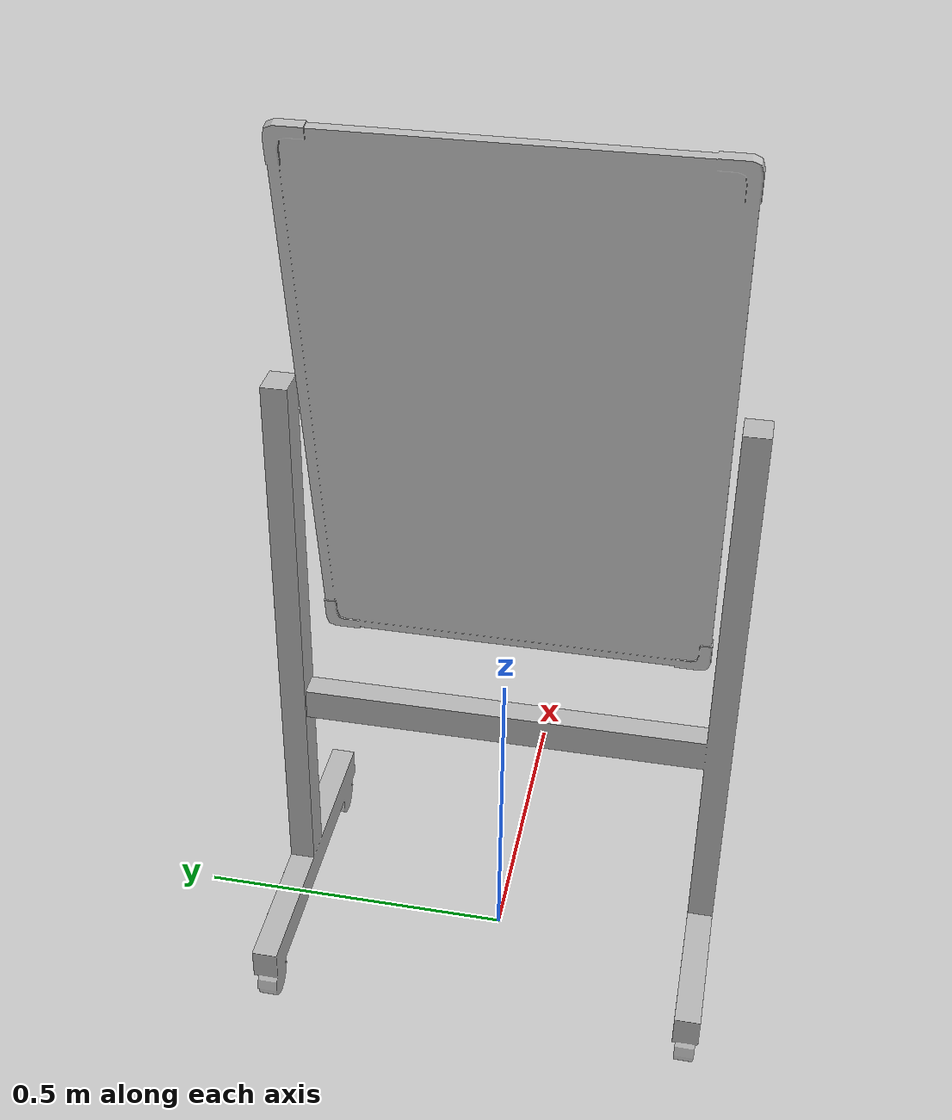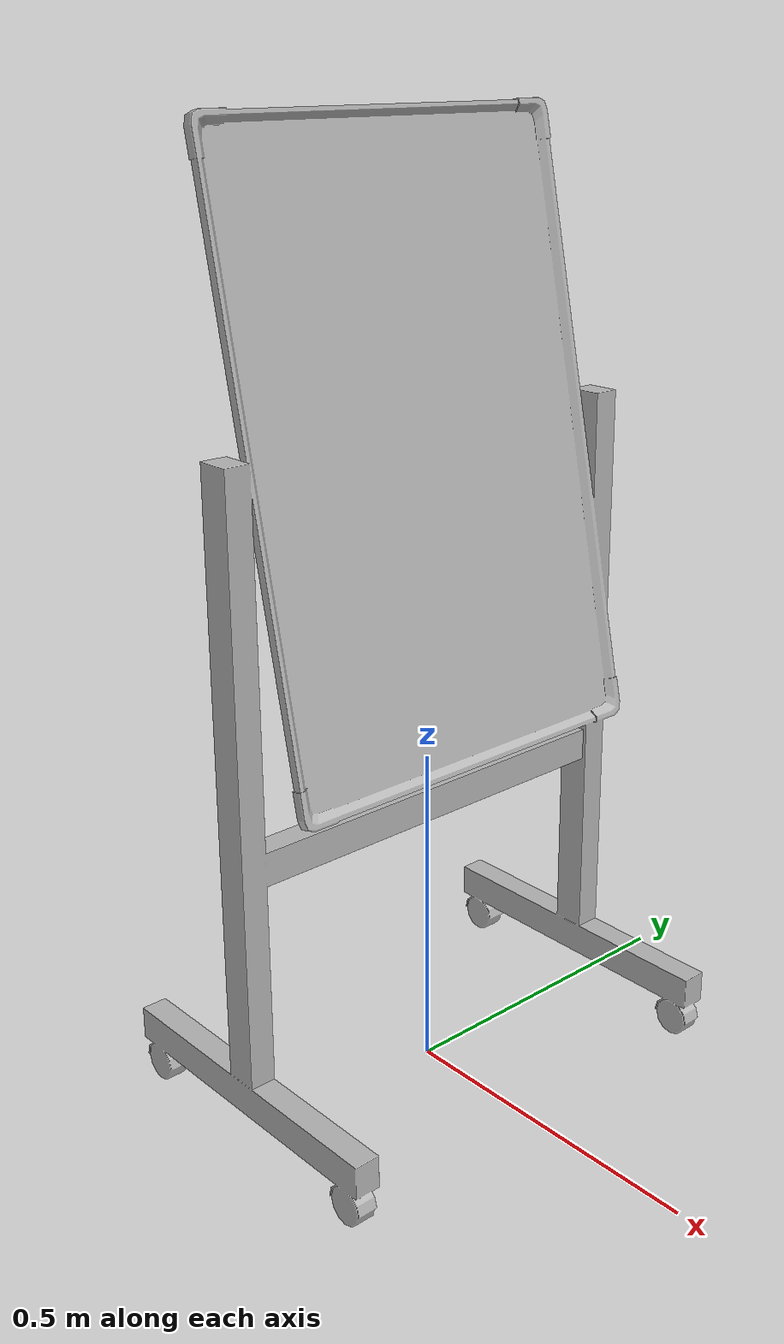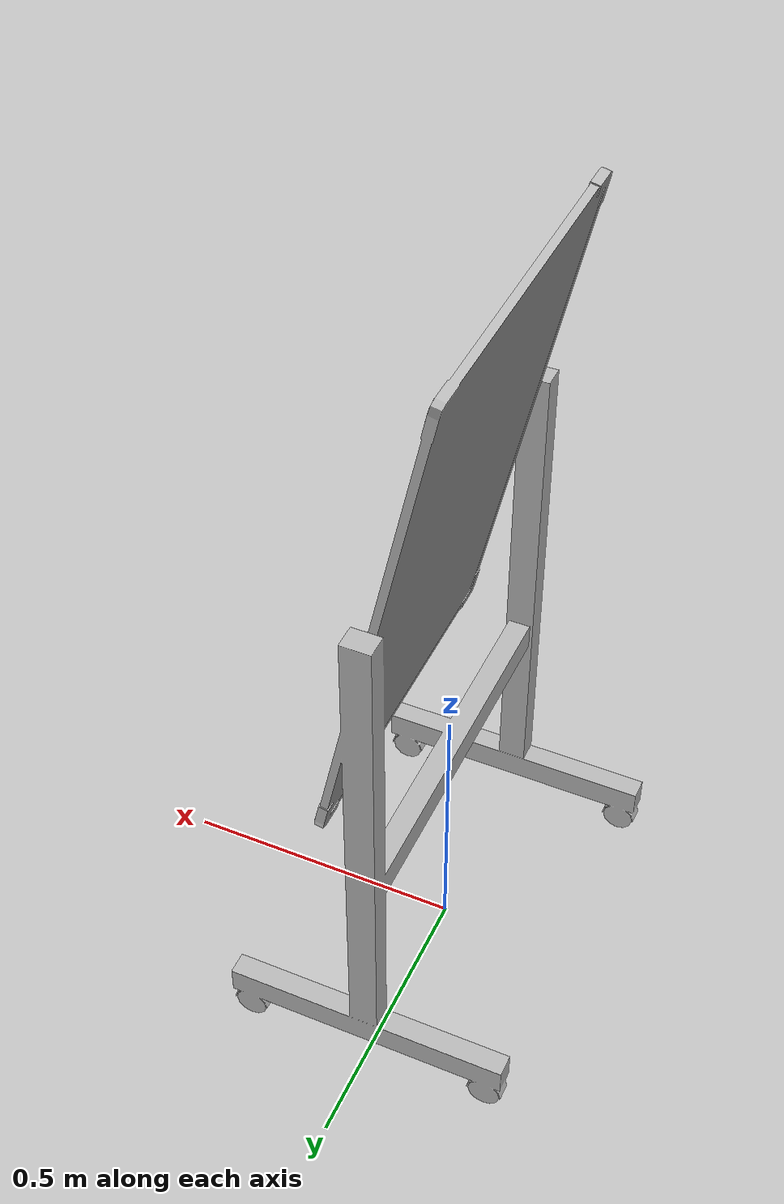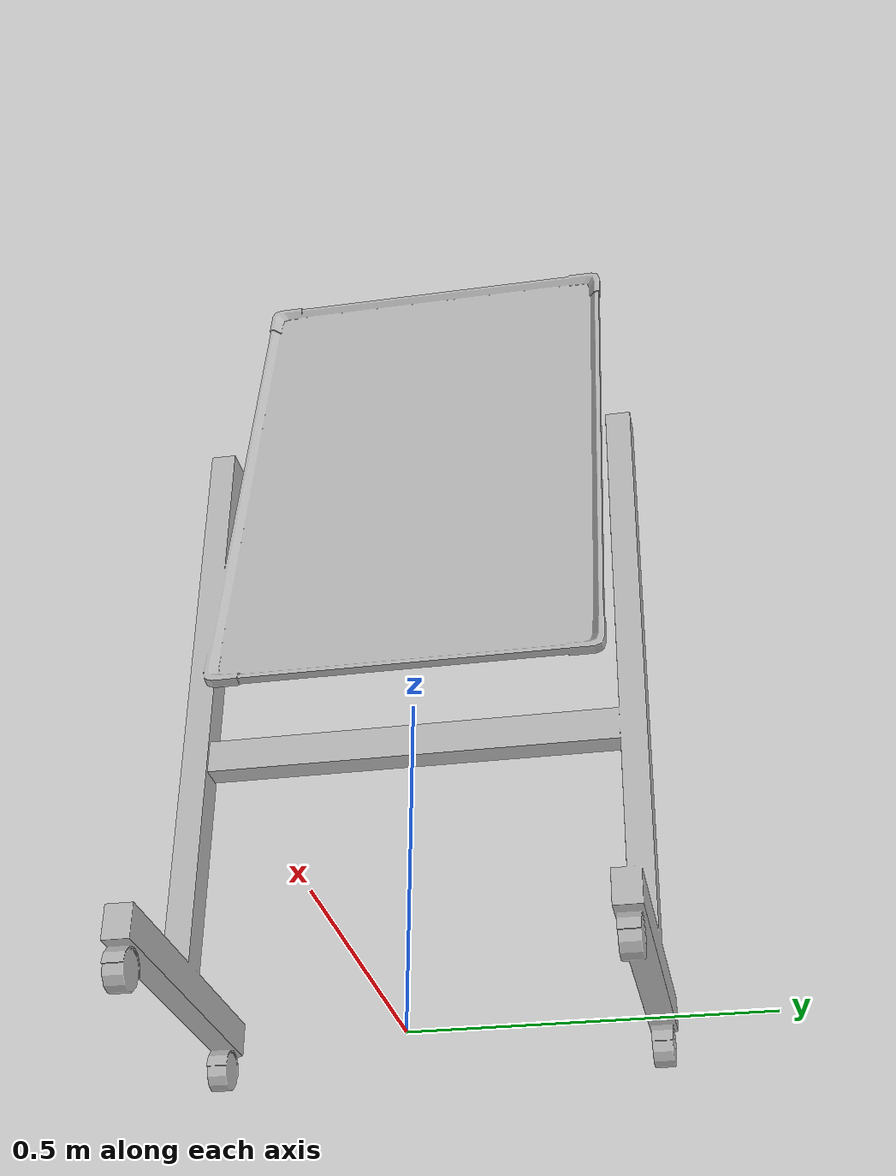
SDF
<?xml version='1.0'?>
<sdf version='1.4'>
  <model name='518'>
    <pose>0 0 0 0 0 0</pose>
    <static>true</static>
    <link name='link'>
      <collision name='collision'>
        <pose>0 0 0 0 0 0</pose>
        <geometry>
          <box>
            <size>0.5 0.7 2</size>
          </box>
        </geometry>
      </collision>
      <visual name='visual'>
        <pose>0 0 0 0 0 0</pose>
        <geometry>
          <mesh><uri>model://518/518.dae</uri></mesh>
        </geometry>
      </visual>
    </link>
  </model>
</sdf>
